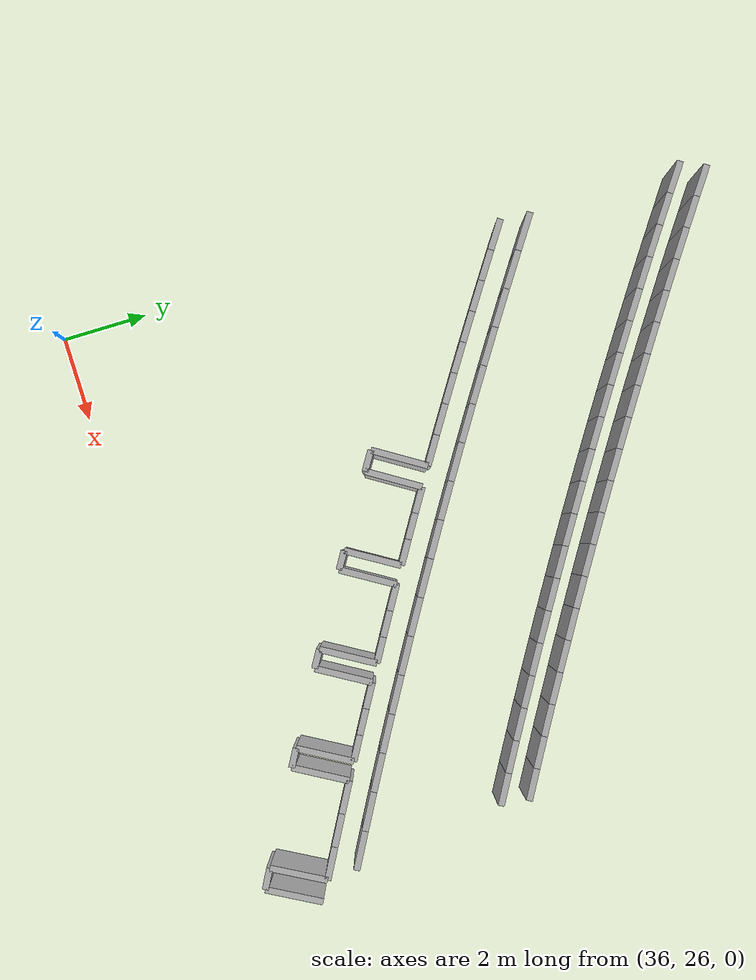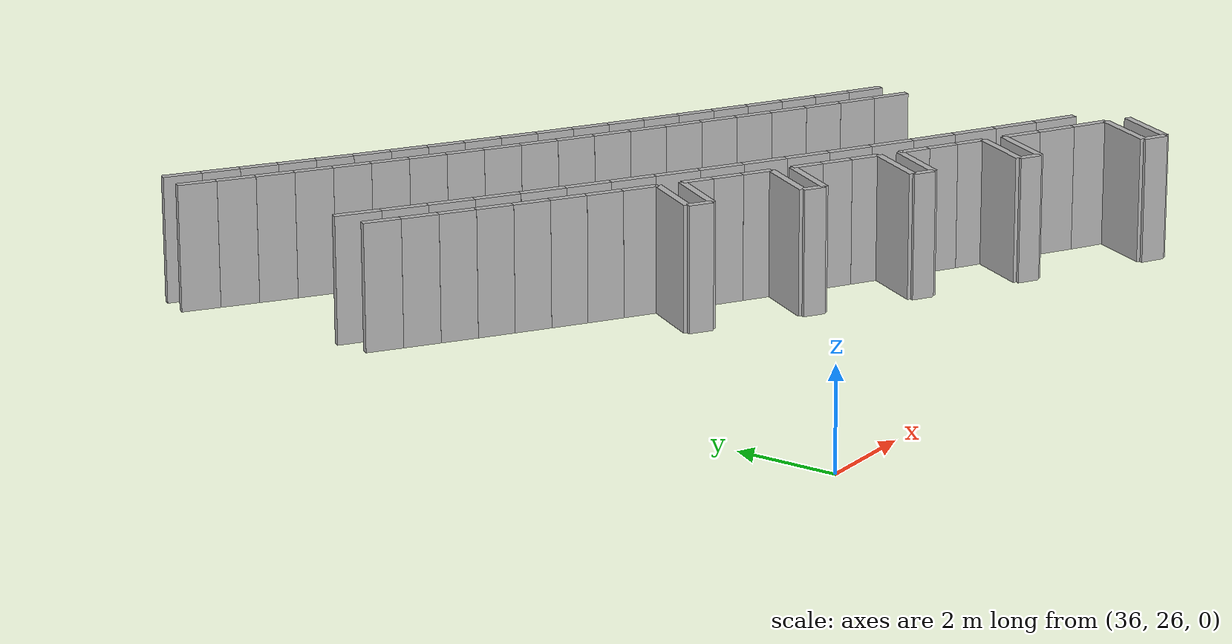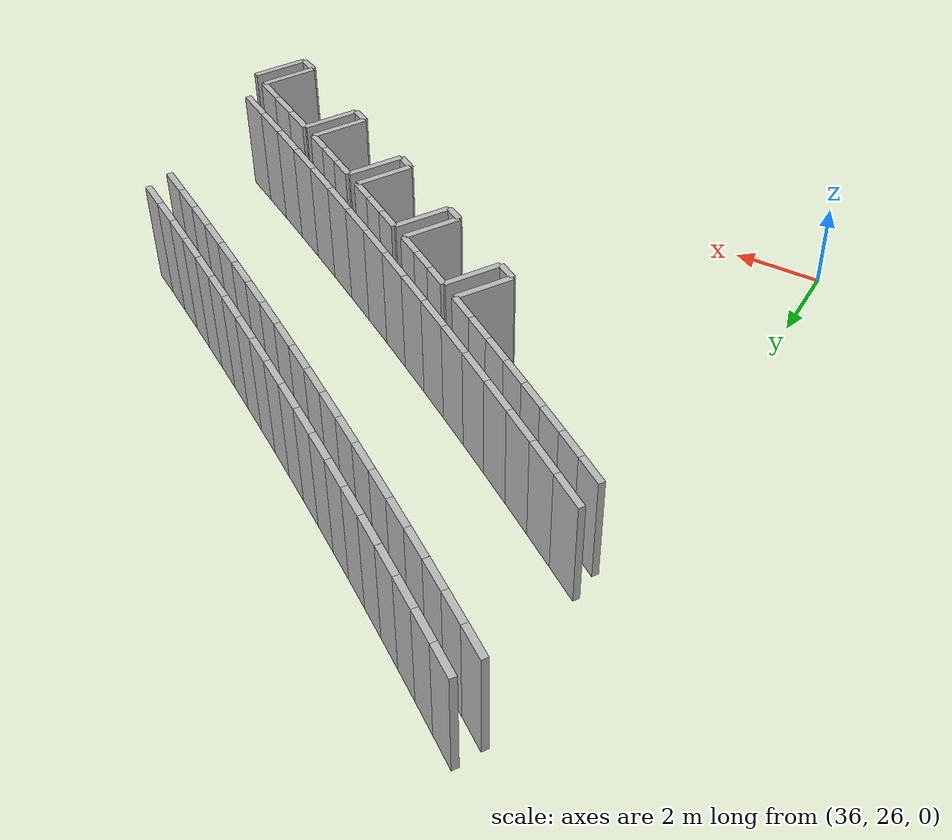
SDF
<sdf version="1.6">
 <model name="sps_0200">
  <static>1</static>
  <allow_auto_disable>0</allow_auto_disable>
  <link name="Wall40">
   <collision name="collision"><geometry><box><size>0.49969 0.15 2.5</size></box></geometry></collision>
   <visual name="visual">
    <geometry><box><size>0.49969 0.15 2.5</size></box></geometry>
    <transparency>0.0</transparency>
   </visual>
   <pose>40.9885 32.0877 1.25 0 -0 2.58012</pose>
  </link>
  <link name="Wall41">
   <collision name="collision"><geometry><box><size>1.35028 0.15 2.5</size></box></geometry></collision>
   <visual name="visual">
    <geometry><box><size>1.35028 0.15 2.5</size></box></geometry>
    <transparency>0.0</transparency>
   </visual>
   <pose>49.5522 27.8344 1.25 0 -0 1.07025</pose>
  </link>
  <link name="Wall765">
   <collision name="collision"><geometry><box><size>1.34983 0.15 2.5</size></box></geometry></collision>
   <visual name="visual">
    <geometry><box><size>1.34983 0.15 2.5</size></box></geometry>
    <transparency>0.0</transparency>
   </visual>
   <pose>41.5593 32.526 1.25 0 0 -2.13221</pose>
  </link>
  <link name="Wall766">
   <collision name="collision"><geometry><box><size>0.44993 0.15 2.5</size></box></geometry></collision>
   <visual name="visual">
    <geometry><box><size>0.44993 0.15 2.5</size></box></geometry>
    <transparency>0.0</transparency>
   </visual>
   <pose>42.9849 30.8538 1.25 0 -0 2.5951</pose>
  </link>
  <link name="Wall767">
   <collision name="collision"><geometry><box><size>0.449914 0.15 2.5</size></box></geometry></collision>
   <visual name="visual">
    <geometry><box><size>0.449914 0.15 2.5</size></box></geometry>
    <transparency>0.0</transparency>
   </visual>
   <pose>46.9821 28.4996 1.25 0 -0 2.62405</pose>
  </link>
  <link name="Wall768">
   <collision name="collision"><geometry><box><size>1.34973 0.15 2.5</size></box></geometry></collision>
   <visual name="visual">
    <geometry><box><size>1.34973 0.15 2.5</size></box></geometry>
    <transparency>0.0</transparency>
   </visual>
   <pose>47.1211 29.1971 1.25 0 -0 1.05236</pose>
  </link>
  <link name="Wall769">
   <collision name="collision"><geometry><box><size>1.34973 0.15 2.5</size></box></geometry></collision>
   <visual name="visual">
    <geometry><box><size>1.34973 0.15 2.5</size></box></geometry>
    <transparency>0.0</transparency>
   </visual>
   <pose>47.512 28.9745 1.25 0 0 -2.08924</pose>
  </link>
  <link name="Wall770">
   <collision name="collision"><geometry><box><size>0.499964 0.15 2.5</size></box></geometry></collision>
   <visual name="visual">
    <geometry><box><size>0.499964 0.15 2.5</size></box></geometry>
    <transparency>0.0</transparency>
   </visual>
   <pose>49.4475 27.1221 1.25 0 -0 2.64092</pose>
  </link>
  <link name="Wall1489">
   <collision name="collision"><geometry><box><size>1.34995 0.15 2.5</size></box></geometry></collision>
   <visual name="visual">
    <geometry><box><size>1.34995 0.15 2.5</size></box></geometry>
    <transparency>0.0</transparency>
   </visual>
   <pose>43.528 31.3135 1.25 0 0 -2.11748</pose>
  </link>
  <link name="Wall1490">
   <collision name="collision"><geometry><box><size>1.35023 0.15 2.5</size></box></geometry></collision>
   <visual name="visual">
    <geometry><box><size>1.35023 0.15 2.5</size></box></geometry>
    <transparency>0.0</transparency>
   </visual>
   <pose>45.1243 30.3581 1.25 0 -0 1.0382</pose>
  </link>
  <link name="Wall1786">
   <collision name="collision"><geometry><box><size>1.34995 0.15 2.5</size></box></geometry></collision>
   <visual name="visual">
    <geometry><box><size>1.34995 0.15 2.5</size></box></geometry>
    <transparency>0.0</transparency>
   </visual>
   <pose>43.1436 31.5473 1.25 0 -0 1.02411</pose>
  </link>
  <link name="Wall1787">
   <collision name="collision"><geometry><box><size>0.450383 0.15 2.5</size></box></geometry></collision>
   <visual name="visual">
    <geometry><box><size>0.450383 0.15 2.5</size></box></geometry>
    <transparency>0.0</transparency>
   </visual>
   <pose>44.9754 29.662 1.25 0 -0 2.60819</pose>
  </link>
  <link name="Wall2129">
   <collision name="collision"><geometry><box><size>1.35023 0.15 2.5</size></box></geometry></collision>
   <visual name="visual">
    <geometry><box><size>1.35023 0.15 2.5</size></box></geometry>
    <transparency>0.0</transparency>
   </visual>
   <pose>45.5121 30.1291 1.25 0 0 -2.10339</pose>
  </link>
  <link name="Wall2131">
   <collision name="collision"><geometry><box><size>1.35007 0.15 2.5</size></box></geometry></collision>
   <visual name="visual">
    <geometry><box><size>1.35007 0.15 2.5</size></box></geometry>
    <transparency>0.0</transparency>
   </visual>
   <pose>49.9908 27.5943 1.25 0 0 -2.07143</pose>
  </link>
  <link name="Wall2511">
   <collision name="collision"><geometry><box><size>1.34969 0.15 2.5</size></box></geometry></collision>
   <visual name="visual">
    <geometry><box><size>1.34969 0.15 2.5</size></box></geometry>
    <transparency>0.0</transparency>
   </visual>
   <pose>41.1359 32.7922 1.25 0 -0 1.01006</pose>
  </link>
  <link name="Wall6546">
   <collision name="collision"><geometry><box><size>0.732997 0.15 2.5</size></box></geometry></collision>
   <visual name="visual">
    <geometry><box><size>0.732997 0.15 2.5</size></box></geometry>
    <transparency>0.0</transparency>
   </visual>
   <pose>36.8945 36.375 1.25 0 0 -0.596571</pose>
  </link>
  <link name="Wall6547">
   <collision name="collision"><geometry><box><size>0.733196 0.15 2.5</size></box></geometry></collision>
   <visual name="visual">
    <geometry><box><size>0.733196 0.15 2.5</size></box></geometry>
    <transparency>0.0</transparency>
   </visual>
   <pose>37.5019 35.9645 1.25 0 0 -0.592066</pose>
  </link>
  <link name="Wall6548">
   <collision name="collision"><geometry><box><size>0.73319 0.15 2.5</size></box></geometry></collision>
   <visual name="visual">
    <geometry><box><size>0.73319 0.15 2.5</size></box></geometry>
    <transparency>0.0</transparency>
   </visual>
   <pose>38.1112 35.5567 1.25 0 0 -0.587564</pose>
  </link>
  <link name="Wall6549">
   <collision name="collision"><geometry><box><size>0.733081 0.15 2.5</size></box></geometry></collision>
   <visual name="visual">
    <geometry><box><size>0.733081 0.15 2.5</size></box></geometry>
    <transparency>0.0</transparency>
   </visual>
   <pose>38.7223 35.1517 1.25 0 0 -0.582969</pose>
  </link>
  <link name="Wall6550">
   <collision name="collision"><geometry><box><size>0.733207 0.15 2.5</size></box></geometry></collision>
   <visual name="visual">
    <geometry><box><size>0.733207 0.15 2.5</size></box></geometry>
    <transparency>0.0</transparency>
   </visual>
   <pose>39.3353 34.7495 1.25 0 0 -0.578375</pose>
  </link>
  <link name="Wall6551">
   <collision name="collision"><geometry><box><size>0.73306 0.15 2.5</size></box></geometry></collision>
   <visual name="visual">
    <geometry><box><size>0.73306 0.15 2.5</size></box></geometry>
    <transparency>0.0</transparency>
   </visual>
   <pose>39.95 34.3501 1.25 0 0 -0.573939</pose>
  </link>
  <link name="Wall6552">
   <collision name="collision"><geometry><box><size>0.733103 0.15 2.5</size></box></geometry></collision>
   <visual name="visual">
    <geometry><box><size>0.733103 0.15 2.5</size></box></geometry>
    <transparency>0.0</transparency>
   </visual>
   <pose>40.5666 33.9536 1.25 0 0 -0.568951</pose>
  </link>
  <link name="Wall6553">
   <collision name="collision"><geometry><box><size>0.73322 0.15 2.5</size></box></geometry></collision>
   <visual name="visual">
    <geometry><box><size>0.73322 0.15 2.5</size></box></geometry>
    <transparency>0.0</transparency>
   </visual>
   <pose>41.1851 33.5599 1.25 0 0 -0.564705</pose>
  </link>
  <link name="Wall6554">
   <collision name="collision"><geometry><box><size>0.775033 0.15 2.5</size></box></geometry></collision>
   <visual name="visual">
    <geometry><box><size>0.775033 0.15 2.5</size></box></geometry>
    <transparency>0.0</transparency>
   </visual>
   <pose>49.537 28.6141 1.25 0 -0 2.6369</pose>
  </link>
  <link name="Wall6555">
   <collision name="collision"><geometry><box><size>0.775033 0.15 2.5</size></box></geometry></collision>
   <visual name="visual">
    <geometry><box><size>0.775033 0.15 2.5</size></box></geometry>
    <transparency>0.0</transparency>
   </visual>
   <pose>48.8595 28.9905 1.25 0 -0 2.63204</pose>
  </link>
  <link name="Wall6556">
   <collision name="collision"><geometry><box><size>0.775015 0.15 2.5</size></box></geometry></collision>
   <visual name="visual">
    <geometry><box><size>0.775015 0.15 2.5</size></box></geometry>
    <transparency>0.0</transparency>
   </visual>
   <pose>48.1839 29.3701 1.25 0 -0 2.62742</pose>
  </link>
  <link name="Wall16577">
   <collision name="collision"><geometry><box><size>0.617301 0.15 2.5</size></box></geometry></collision>
   <visual name="visual">
    <geometry><box><size>0.617301 0.15 2.5</size></box></geometry>
    <transparency>0.0</transparency>
   </visual>
   <pose>43.2313 32.2851 1.25 0 -0 2.5921</pose>
  </link>
  <link name="Wall16578">
   <collision name="collision"><geometry><box><size>0.617472 0.15 2.5</size></box></geometry></collision>
   <visual name="visual">
    <geometry><box><size>0.617472 0.15 2.5</size></box></geometry>
    <transparency>0.0</transparency>
   </visual>
   <pose>42.7053 32.6085 1.25 0 -0 2.58844</pose>
  </link>
  <link name="Wall16579">
   <collision name="collision"><geometry><box><size>0.617438 0.15 2.5</size></box></geometry></collision>
   <visual name="visual">
    <geometry><box><size>0.617438 0.15 2.5</size></box></geometry>
    <transparency>0.0</transparency>
   </visual>
   <pose>42.1807 32.934 1.25 0 -0 2.58422</pose>
  </link>
  <link name="Wall24559">
   <collision name="collision"><geometry><box><size>0.913726 0.15 2.5</size></box></geometry></collision>
   <visual name="visual">
    <geometry><box><size>0.913726 0.15 2.5</size></box></geometry>
    <transparency>0.0</transparency>
   </visual>
   <pose>37.0153 37.019 1.25 0 0 -0.598303</pose>
  </link>
  <link name="Wall24560">
   <collision name="collision"><geometry><box><size>0.913704 0.15 2.5</size></box></geometry></collision>
   <visual name="visual">
    <geometry><box><size>0.913704 0.15 2.5</size></box></geometry>
    <transparency>0.0</transparency>
   </visual>
   <pose>37.7718 36.5066 1.25 0 0 -0.592431</pose>
  </link>
  <link name="Wall24561">
   <collision name="collision"><geometry><box><size>0.913695 0.15 2.5</size></box></geometry></collision>
   <visual name="visual">
    <geometry><box><size>0.913695 0.15 2.5</size></box></geometry>
    <transparency>0.0</transparency>
   </visual>
   <pose>38.5312 35.9985 1.25 0 0 -0.586891</pose>
  </link>
  <link name="Wall24562">
   <collision name="collision"><geometry><box><size>0.913767 0.15 2.5</size></box></geometry></collision>
   <visual name="visual">
    <geometry><box><size>0.913767 0.15 2.5</size></box></geometry>
    <transparency>0.0</transparency>
   </visual>
   <pose>39.2935 35.4947 1.25 0 0 -0.581074</pose>
  </link>
  <link name="Wall24563">
   <collision name="collision"><geometry><box><size>0.913717 0.15 2.5</size></box></geometry></collision>
   <visual name="visual">
    <geometry><box><size>0.913717 0.15 2.5</size></box></geometry>
    <transparency>0.0</transparency>
   </visual>
   <pose>40.0587 34.9953 1.25 0 0 -0.575367</pose>
  </link>
  <link name="Wall24564">
   <collision name="collision"><geometry><box><size>0.913696 0.15 2.5</size></box></geometry></collision>
   <visual name="visual">
    <geometry><box><size>0.913696 0.15 2.5</size></box></geometry>
    <transparency>0.0</transparency>
   </visual>
   <pose>40.8267 34.5003 1.25 0 0 -0.56966</pose>
  </link>
  <link name="Wall24565">
   <collision name="collision"><geometry><box><size>0.913835 0.15 2.5</size></box></geometry></collision>
   <visual name="visual">
    <geometry><box><size>0.913835 0.15 2.5</size></box></geometry>
    <transparency>0.0</transparency>
   </visual>
   <pose>41.5976 34.0096 1.25 0 0 -0.564178</pose>
  </link>
  <link name="Wall24566">
   <collision name="collision"><geometry><box><size>0.913634 0.15 2.5</size></box></geometry></collision>
   <visual name="visual">
    <geometry><box><size>0.913634 0.15 2.5</size></box></geometry>
    <transparency>0.0</transparency>
   </visual>
   <pose>42.3711 33.5232 1.25 0 0 -0.558557</pose>
  </link>
  <link name="Wall24567">
   <collision name="collision"><geometry><box><size>0.913908 0.15 2.5</size></box></geometry></collision>
   <visual name="visual">
    <geometry><box><size>0.913908 0.15 2.5</size></box></geometry>
    <transparency>0.0</transparency>
   </visual>
   <pose>43.1474 33.0412 1.25 0 0 -0.552709</pose>
  </link>
  <link name="Wall24568">
   <collision name="collision"><geometry><box><size>0.913797 0.15 2.5</size></box></geometry></collision>
   <visual name="visual">
    <geometry><box><size>0.913797 0.15 2.5</size></box></geometry>
    <transparency>0.0</transparency>
   </visual>
   <pose>43.9265 32.5636 1.25 0 0 -0.547144</pose>
  </link>
  <link name="Wall24569">
   <collision name="collision"><geometry><box><size>0.913798 0.15 2.5</size></box></geometry></collision>
   <visual name="visual">
    <geometry><box><size>0.913798 0.15 2.5</size></box></geometry>
    <transparency>0.0</transparency>
   </visual>
   <pose>44.7083 32.0905 1.25 0 0 -0.54121</pose>
  </link>
  <link name="Wall24570">
   <collision name="collision"><geometry><box><size>0.913619 0.15 2.5</size></box></geometry></collision>
   <visual name="visual">
    <geometry><box><size>0.913619 0.15 2.5</size></box></geometry>
    <transparency>0.0</transparency>
   </visual>
   <pose>45.4927 31.6219 1.25 0 0 -0.535802</pose>
  </link>
  <link name="Wall24571">
   <collision name="collision"><geometry><box><size>0.913773 0.15 2.5</size></box></geometry></collision>
   <visual name="visual">
    <geometry><box><size>0.913773 0.15 2.5</size></box></geometry>
    <transparency>0.0</transparency>
   </visual>
   <pose>46.2797 31.1577 1.25 0 0 -0.530041</pose>
  </link>
  <link name="Wall24572">
   <collision name="collision"><geometry><box><size>0.91358 0.15 2.5</size></box></geometry></collision>
   <visual name="visual">
    <geometry><box><size>0.91358 0.15 2.5</size></box></geometry>
    <transparency>0.0</transparency>
   </visual>
   <pose>47.0693 30.698 1.25 0 0 -0.524367</pose>
  </link>
  <link name="Wall24573">
   <collision name="collision"><geometry><box><size>0.913772 0.15 2.5</size></box></geometry></collision>
   <visual name="visual">
    <geometry><box><size>0.913772 0.15 2.5</size></box></geometry>
    <transparency>0.0</transparency>
   </visual>
   <pose>47.8615 30.2428 1.25 0 0 -0.518699</pose>
  </link>
  <link name="Wall24574">
   <collision name="collision"><geometry><box><size>0.913797 0.15 2.5</size></box></geometry></collision>
   <visual name="visual">
    <geometry><box><size>0.913797 0.15 2.5</size></box></geometry>
    <transparency>0.0</transparency>
   </visual>
   <pose>48.6564 29.7921 1.25 0 0 -0.512924</pose>
  </link>
  <link name="Wall24575">
   <collision name="collision"><geometry><box><size>0.913699 0.15 2.5</size></box></geometry></collision>
   <visual name="visual">
    <geometry><box><size>0.913699 0.15 2.5</size></box></geometry>
    <transparency>0.0</transparency>
   </visual>
   <pose>49.4538 29.3459 1.25 0 0 -0.507397</pose>
  </link>
  <link name="Wall27417">
   <collision name="collision"><geometry><box><size>0.616917 0.15 2.5</size></box></geometry></collision>
   <visual name="visual">
    <geometry><box><size>0.616917 0.15 2.5</size></box></geometry>
    <transparency>0.0</transparency>
   </visual>
   <pose>45.2018 31.0971 1.25 0 -0 2.60616</pose>
  </link>
  <link name="Wall27418">
   <collision name="collision"><geometry><box><size>0.616983 0.15 2.5</size></box></geometry></collision>
   <visual name="visual">
    <geometry><box><size>0.616983 0.15 2.5</size></box></geometry>
    <transparency>0.0</transparency>
   </visual>
   <pose>44.6718 31.4129 1.25 0 -0 2.60231</pose>
  </link>
  <link name="Wall27419">
   <collision name="collision"><geometry><box><size>0.616943 0.15 2.5</size></box></geometry></collision>
   <visual name="visual">
    <geometry><box><size>0.616943 0.15 2.5</size></box></geometry>
    <transparency>0.0</transparency>
   </visual>
   <pose>44.143 31.7307 1.25 0 -0 2.59858</pose>
  </link>
  <link name="Wall27420">
   <collision name="collision"><geometry><box><size>0.616738 0.15 2.5</size></box></geometry></collision>
   <visual name="visual">
    <geometry><box><size>0.616738 0.15 2.5</size></box></geometry>
    <transparency>0.0</transparency>
   </visual>
   <pose>47.1881 29.9369 1.25 0 -0 2.6202</pose>
  </link>
  <link name="Wall27421">
   <collision name="collision"><geometry><box><size>0.61649 0.15 2.5</size></box></geometry></collision>
   <visual name="visual">
    <geometry><box><size>0.61649 0.15 2.5</size></box></geometry>
    <transparency>0.0</transparency>
   </visual>
   <pose>46.654 30.245 1.25 0 -0 2.61654</pose>
  </link>
  <link name="Wall27422">
   <collision name="collision"><geometry><box><size>0.616646 0.15 2.5</size></box></geometry></collision>
   <visual name="visual">
    <geometry><box><size>0.616646 0.15 2.5</size></box></geometry>
    <transparency>0.0</transparency>
   </visual>
   <pose>46.1211 30.5551 1.25 0 -0 2.61256</pose>
  </link>
  <link name="Wall27473">
   <collision name="collision"><geometry><box><size>0.76339 0.15 2.5</size></box></geometry></collision>
   <visual name="visual">
    <geometry><box><size>0.76339 0.15 2.5</size></box></geometry>
    <transparency>0.0</transparency>
   </visual>
   <pose>36.8332 40.6714 1.25 0 0 -0.612043</pose>
  </link>
  <link name="Wall27474">
   <collision name="collision"><geometry><box><size>0.76348 0.15 2.5</size></box></geometry></collision>
   <visual name="visual">
    <geometry><box><size>0.76348 0.15 2.5</size></box></geometry>
    <transparency>0.0</transparency>
   </visual>
   <pose>37.4592 40.2343 1.25 0 0 -0.607183</pose>
  </link>
  <link name="Wall27475">
   <collision name="collision"><geometry><box><size>0.763489 0.15 2.5</size></box></geometry></collision>
   <visual name="visual">
    <geometry><box><size>0.763489 0.15 2.5</size></box></geometry>
    <transparency>0.0</transparency>
   </visual>
   <pose>38.0871 39.8001 1.25 0 0 -0.602703</pose>
  </link>
  <link name="Wall27476">
   <collision name="collision"><geometry><box><size>0.763561 0.15 2.5</size></box></geometry></collision>
   <visual name="visual">
    <geometry><box><size>0.763561 0.15 2.5</size></box></geometry>
    <transparency>0.0</transparency>
   </visual>
   <pose>38.7172 39.3689 1.25 0 0 -0.597602</pose>
  </link>
  <link name="Wall27477">
   <collision name="collision"><geometry><box><size>0.763364 0.15 2.5</size></box></geometry></collision>
   <visual name="visual">
    <geometry><box><size>0.763364 0.15 2.5</size></box></geometry>
    <transparency>0.0</transparency>
   </visual>
   <pose>39.3494 38.9409 1.25 0 0 -0.59266</pose>
  </link>
  <link name="Wall27478">
   <collision name="collision"><geometry><box><size>0.763475 0.15 2.5</size></box></geometry></collision>
   <visual name="visual">
    <geometry><box><size>0.763475 0.15 2.5</size></box></geometry>
    <transparency>0.0</transparency>
   </visual>
   <pose>39.9836 38.5159 1.25 0 0 -0.588136</pose>
  </link>
  <link name="Wall27479">
   <collision name="collision"><geometry><box><size>0.763602 0.15 2.5</size></box></geometry></collision>
   <visual name="visual">
    <geometry><box><size>0.763602 0.15 2.5</size></box></geometry>
    <transparency>0.0</transparency>
   </visual>
   <pose>40.62 38.0939 1.25 0 0 -0.583037</pose>
  </link>
  <link name="Wall27480">
   <collision name="collision"><geometry><box><size>0.763715 0.15 2.5</size></box></geometry></collision>
   <visual name="visual">
    <geometry><box><size>0.763715 0.15 2.5</size></box></geometry>
    <transparency>0.0</transparency>
   </visual>
   <pose>41.2585 37.675 1.25 0 0 -0.578161</pose>
  </link>
  <link name="Wall27481">
   <collision name="collision"><geometry><box><size>0.76335 0.15 2.5</size></box></geometry></collision>
   <visual name="visual">
    <geometry><box><size>0.76335 0.15 2.5</size></box></geometry>
    <transparency>0.0</transparency>
   </visual>
   <pose>41.8989 37.2592 1.25 0 0 -0.57361</pose>
  </link>
  <link name="Wall27482">
   <collision name="collision"><geometry><box><size>0.763296 0.15 2.5</size></box></geometry></collision>
   <visual name="visual">
    <geometry><box><size>0.763296 0.15 2.5</size></box></geometry>
    <transparency>0.0</transparency>
   </visual>
   <pose>42.541 36.8466 1.25 0 0 -0.568618</pose>
  </link>
  <link name="Wall27483">
   <collision name="collision"><geometry><box><size>0.763696 0.15 2.5</size></box></geometry></collision>
   <visual name="visual">
    <geometry><box><size>0.763696 0.15 2.5</size></box></geometry>
    <transparency>0.0</transparency>
   </visual>
   <pose>43.1854 36.437 1.25 0 0 -0.563928</pose>
  </link>
  <link name="Wall27484">
   <collision name="collision"><geometry><box><size>0.763323 0.15 2.5</size></box></geometry></collision>
   <visual name="visual">
    <geometry><box><size>0.763323 0.15 2.5</size></box></geometry>
    <transparency>0.0</transparency>
   </visual>
   <pose>43.8317 36.0305 1.25 0 0 -0.558947</pose>
  </link>
  <link name="Wall27485">
   <collision name="collision"><geometry><box><size>0.763661 0.15 2.5</size></box></geometry></collision>
   <visual name="visual">
    <geometry><box><size>0.763661 0.15 2.5</size></box></geometry>
    <transparency>0.0</transparency>
   </visual>
   <pose>44.4799 35.6272 1.25 0 0 -0.554058</pose>
  </link>
  <link name="Wall27486">
   <collision name="collision"><geometry><box><size>0.763504 0.15 2.5</size></box></geometry></collision>
   <visual name="visual">
    <geometry><box><size>0.763504 0.15 2.5</size></box></geometry>
    <transparency>0.0</transparency>
   </visual>
   <pose>45.1302 35.227 1.25 0 0 -0.549304</pose>
  </link>
  <link name="Wall27487">
   <collision name="collision"><geometry><box><size>0.763481 0.15 2.5</size></box></geometry></collision>
   <visual name="visual">
    <geometry><box><size>0.763481 0.15 2.5</size></box></geometry>
    <transparency>0.0</transparency>
   </visual>
   <pose>45.7823 34.8299 1.25 0 0 -0.544642</pose>
  </link>
  <link name="Wall27488">
   <collision name="collision"><geometry><box><size>0.763475 0.15 2.5</size></box></geometry></collision>
   <visual name="visual">
    <geometry><box><size>0.763475 0.15 2.5</size></box></geometry>
    <transparency>0.0</transparency>
   </visual>
   <pose>46.4364 34.436 1.25 0 0 -0.539515</pose>
  </link>
  <link name="Wall27489">
   <collision name="collision"><geometry><box><size>0.763591 0.15 2.5</size></box></geometry></collision>
   <visual name="visual">
    <geometry><box><size>0.763591 0.15 2.5</size></box></geometry>
    <transparency>0.0</transparency>
   </visual>
   <pose>47.0924 34.0453 1.25 0 0 -0.534772</pose>
  </link>
  <link name="Wall27490">
   <collision name="collision"><geometry><box><size>0.763589 0.15 2.5</size></box></geometry></collision>
   <visual name="visual">
    <geometry><box><size>0.763589 0.15 2.5</size></box></geometry>
    <transparency>0.0</transparency>
   </visual>
   <pose>47.7503 33.6577 1.25 0 0 -0.530042</pose>
  </link>
  <link name="Wall27491">
   <collision name="collision"><geometry><box><size>0.763489 0.15 2.5</size></box></geometry></collision>
   <visual name="visual">
    <geometry><box><size>0.763489 0.15 2.5</size></box></geometry>
    <transparency>0.0</transparency>
   </visual>
   <pose>48.41 33.2733 1.25 0 0 -0.525215</pose>
  </link>
  <link name="Wall27492">
   <collision name="collision"><geometry><box><size>0.76362 0.15 2.5</size></box></geometry></collision>
   <visual name="visual">
    <geometry><box><size>0.76362 0.15 2.5</size></box></geometry>
    <transparency>0.0</transparency>
   </visual>
   <pose>49.0716 32.8921 1.25 0 0 -0.520227</pose>
  </link>
  <link name="Wall27542">
   <collision name="collision"><geometry><box><size>0.753621 0.15 2.5</size></box></geometry></collision>
   <visual name="visual">
    <geometry><box><size>0.753621 0.15 2.5</size></box></geometry>
    <transparency>0.0</transparency>
   </visual>
   <pose>37.0826 41.2295 1.25 0 0 -0.613028</pose>
  </link>
  <link name="Wall27543">
   <collision name="collision"><geometry><box><size>0.753452 0.15 2.5</size></box></geometry></collision>
   <visual name="visual">
    <geometry><box><size>0.753452 0.15 2.5</size></box></geometry>
    <transparency>0.0</transparency>
   </visual>
   <pose>37.7 40.7975 1.25 0 0 -0.608045</pose>
  </link>
  <link name="Wall27544">
   <collision name="collision"><geometry><box><size>0.75366 0.15 2.5</size></box></geometry></collision>
   <visual name="visual">
    <geometry><box><size>0.75366 0.15 2.5</size></box></geometry>
    <transparency>0.0</transparency>
   </visual>
   <pose>38.3195 40.3685 1.25 0 0 -0.603322</pose>
  </link>
  <link name="Wall27545">
   <collision name="collision"><geometry><box><size>0.753596 0.15 2.5</size></box></geometry></collision>
   <visual name="visual">
    <geometry><box><size>0.753596 0.15 2.5</size></box></geometry>
    <transparency>0.0</transparency>
   </visual>
   <pose>38.9412 39.9424 1.25 0 0 -0.598471</pose>
  </link>
  <link name="Wall27546">
   <collision name="collision"><geometry><box><size>0.753465 0.15 2.5</size></box></geometry></collision>
   <visual name="visual">
    <geometry><box><size>0.753465 0.15 2.5</size></box></geometry>
    <transparency>0.0</transparency>
   </visual>
   <pose>39.5648 39.5194 1.25 0 0 -0.593597</pose>
  </link>
  <link name="Wall27547">
   <collision name="collision"><geometry><box><size>0.753386 0.15 2.5</size></box></geometry></collision>
   <visual name="visual">
    <geometry><box><size>0.753386 0.15 2.5</size></box></geometry>
    <transparency>0.0</transparency>
   </visual>
   <pose>40.1902 39.0994 1.25 0 0 -0.589081</pose>
  </link>
  <link name="Wall27548">
   <collision name="collision"><geometry><box><size>0.753764 0.15 2.5</size></box></geometry></collision>
   <visual name="visual">
    <geometry><box><size>0.753764 0.15 2.5</size></box></geometry>
    <transparency>0.0</transparency>
   </visual>
   <pose>40.8179 38.6823 1.25 0 0 -0.583983</pose>
  </link>
  <link name="Wall27549">
   <collision name="collision"><geometry><box><size>0.753448 0.15 2.5</size></box></geometry></collision>
   <visual name="visual">
    <geometry><box><size>0.753448 0.15 2.5</size></box></geometry>
    <transparency>0.0</transparency>
   </visual>
   <pose>41.4476 38.2683 1.25 0 0 -0.579218</pose>
  </link>
  <link name="Wall27550">
   <collision name="collision"><geometry><box><size>0.753503 0.15 2.5</size></box></geometry></collision>
   <visual name="visual">
    <geometry><box><size>0.753503 0.15 2.5</size></box></geometry>
    <transparency>0.0</transparency>
   </visual>
   <pose>42.0791 37.8573 1.25 0 0 -0.574725</pose>
  </link>
  <link name="Wall27551">
   <collision name="collision"><geometry><box><size>0.753525 0.15 2.5</size></box></geometry></collision>
   <visual name="visual">
    <geometry><box><size>0.753525 0.15 2.5</size></box></geometry>
    <transparency>0.0</transparency>
   </visual>
   <pose>42.7125 37.4492 1.25 0 0 -0.569985</pose>
  </link>
  <link name="Wall27552">
   <collision name="collision"><geometry><box><size>0.753433 0.15 2.5</size></box></geometry></collision>
   <visual name="visual">
    <geometry><box><size>0.753433 0.15 2.5</size></box></geometry>
    <transparency>0.0</transparency>
   </visual>
   <pose>43.3479 37.0442 1.25 0 0 -0.564971</pose>
  </link>
  <link name="Wall27553">
   <collision name="collision"><geometry><box><size>0.753748 0.15 2.5</size></box></geometry></collision>
   <visual name="visual">
    <geometry><box><size>0.753748 0.15 2.5</size></box></geometry>
    <transparency>0.0</transparency>
   </visual>
   <pose>43.9853 36.6423 1.25 0 0 -0.560016</pose>
  </link>
  <link name="Wall27554">
   <collision name="collision"><geometry><box><size>0.753512 0.15 2.5</size></box></geometry></collision>
   <visual name="visual">
    <geometry><box><size>0.753512 0.15 2.5</size></box></geometry>
    <transparency>0.0</transparency>
   </visual>
   <pose>44.6247 36.2434 1.25 0 0 -0.555534</pose>
  </link>
  <link name="Wall27555">
   <collision name="collision"><geometry><box><size>0.753558 0.15 2.5</size></box></geometry></collision>
   <visual name="visual">
    <geometry><box><size>0.753558 0.15 2.5</size></box></geometry>
    <transparency>0.0</transparency>
   </visual>
   <pose>45.266 35.8476 1.25 0 0 -0.550546</pose>
  </link>
  <link name="Wall27556">
   <collision name="collision"><geometry><box><size>0.753479 0.15 2.5</size></box></geometry></collision>
   <visual name="visual">
    <geometry><box><size>0.753479 0.15 2.5</size></box></geometry>
    <transparency>0.0</transparency>
   </visual>
   <pose>45.909 35.4549 1.25 0 0 -0.545865</pose>
  </link>
  <link name="Wall27557">
   <collision name="collision"><geometry><box><size>0.753656 0.15 2.5</size></box></geometry></collision>
   <visual name="visual">
    <geometry><box><size>0.753656 0.15 2.5</size></box></geometry>
    <transparency>0.0</transparency>
   </visual>
   <pose>46.554 35.0652 1.25 0 0 -0.541086</pose>
  </link>
  <link name="Wall27558">
   <collision name="collision"><geometry><box><size>0.753442 0.15 2.5</size></box></geometry></collision>
   <visual name="visual">
    <geometry><box><size>0.753442 0.15 2.5</size></box></geometry>
    <transparency>0.0</transparency>
   </visual>
   <pose>47.2009 34.6786 1.25 0 0 -0.536349</pose>
  </link>
  <link name="Wall27559">
   <collision name="collision"><geometry><box><size>0.753601 0.15 2.5</size></box></geometry></collision>
   <visual name="visual">
    <geometry><box><size>0.753601 0.15 2.5</size></box></geometry>
    <transparency>0.0</transparency>
   </visual>
   <pose>47.8495 34.2951 1.25 0 0 -0.531613</pose>
  </link>
  <link name="Wall27560">
   <collision name="collision"><geometry><box><size>0.753563 0.15 2.5</size></box></geometry></collision>
   <visual name="visual">
    <geometry><box><size>0.753563 0.15 2.5</size></box></geometry>
    <transparency>0.0</transparency>
   </visual>
   <pose>48.5001 33.9148 1.25 0 0 -0.52639</pose>
  </link>
  <link name="Wall27561">
   <collision name="collision"><geometry><box><size>0.753493 0.15 2.5</size></box></geometry></collision>
   <visual name="visual">
    <geometry><box><size>0.753493 0.15 2.5</size></box></geometry>
    <transparency>0.0</transparency>
   </visual>
   <pose>49.1524 33.5377 1.25 0 0 -0.521859</pose>
  </link>
 </model>
</sdf>
